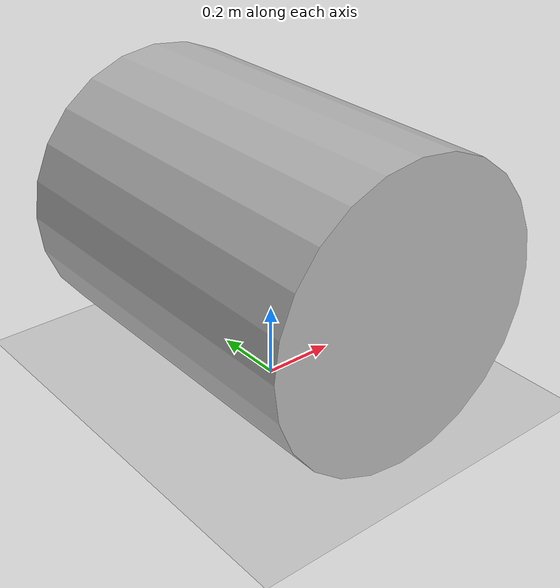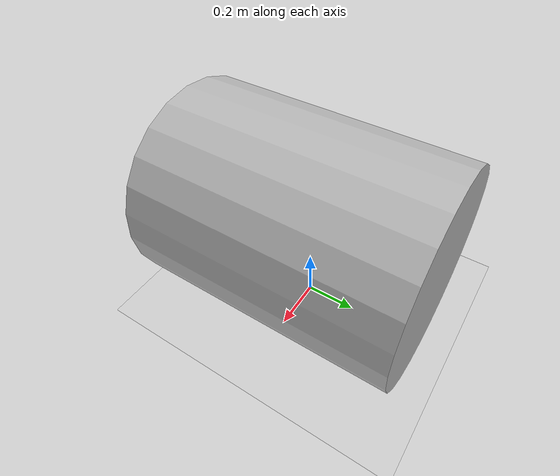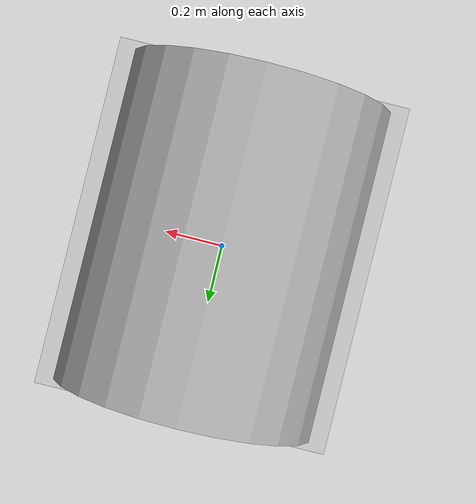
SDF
<?xml version="1.0" ?>
<sdf version="1.4">
  <!-- We use a custom world for the rrbot so that the camera angle is launched correctly -->

  <world name="default">

    <include>
      <uri>model://ground_plane</uri>
    </include>

    <!-- Global light source -->
    <include>
      <uri>model://sun</uri>
    </include>

    <include>
        <uri>model://cylinder</uri>
        <name>cylinder</name>
        <pose>0.0 0 0 0 0 0</pose>
    </include>

    <!-- Focus camera on tall pendulum -->
    <gui fullscreen='0'>
      <camera name='user_camera'>
        <pose>4.927360 -4.376610 3.740080 0.000000 0.275643 2.356190</pose>
        <view_controller>orbit</view_controller>
      </camera>
    </gui>

  </world>
</sdf>

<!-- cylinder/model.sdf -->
<sdf version='1.4'>
  <model name="cylinder">
  	<link name="base">
        <pose>0 0 0.4 0 1.5707 1.5707</pose>
        <collision name="collision">
          <geometry>
            <cylinder>
              <radius>.4</radius>
              <length>1</length>
            </cylinder>
          </geometry>
        </collision>
        <visual name="visual">
          <geometry>
            <cylinder>
              <radius>.4</radius>
              <length>1</length>
            </cylinder>
          </geometry>
        </visual>
      </link>
  </model>
</sdf>
